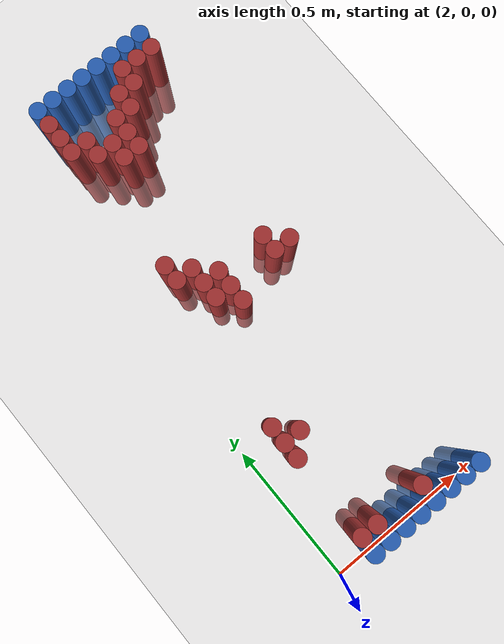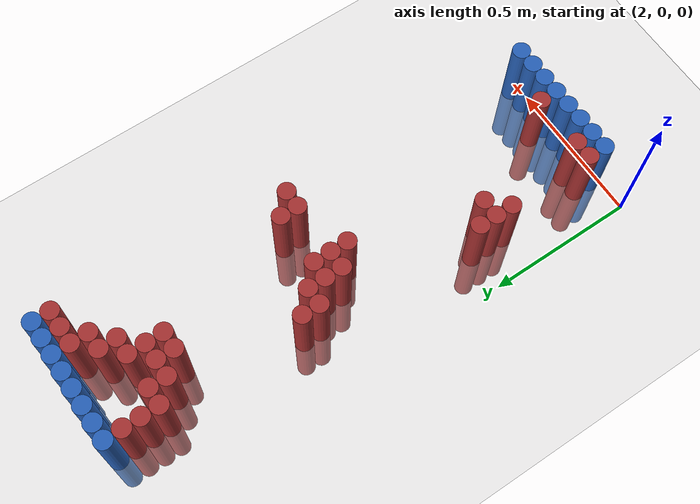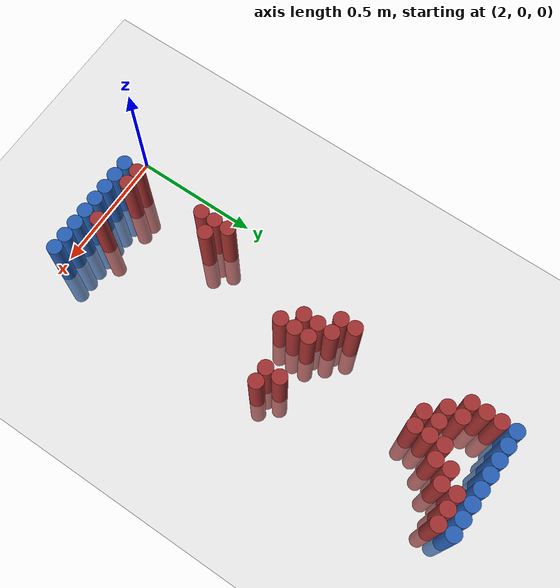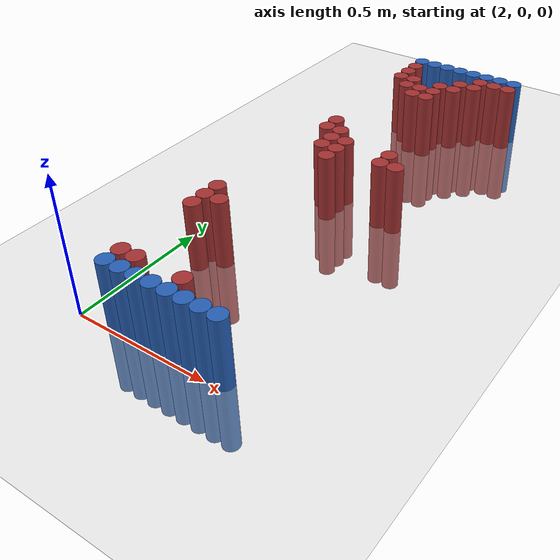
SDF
<sdf version="1.6">
 <world name="default">
  <model name="ground_plane">
   <static>1</static>
   <link name="link">
    <collision name="collision">
     <geometry><plane><normal>0 0 1</normal><size>100 100</size></plane></geometry>
     <surface><friction><ode><mu>100</mu><mu2>50</mu2></ode></friction></surface>
    </collision>
    <visual name="visual">
     <cast_shadows>0</cast_shadows>
     <geometry><plane><normal>0 0 1</normal><size>100 100</size></plane></geometry>
     <material>
      <script><uri>file://media/materials/scripts/gazebo.material</uri><name>Gazebo/Grey</name></script>
     </material>
    </visual>
   </link>
  </model>
  <model name="unit_cylinder_97">
   <static>1</static>
   <pose>2.190000 1.770000 0.000000 0.000000 0.000000 0.000000</pose>
   <link name="link">
    <inertial>
     <mass>1</mass>
     <inertia><ixx>0.145833</ixx><ixy>0</ixy><ixz>0</ixz><iyy>0.145833</iyy><iyz>0</iyz><izz>0.125</izz></inertia>
    </inertial>
    <collision name="collision">
     <geometry><cylinder><radius>0.030000</radius><length>0.5</length></cylinder></geometry>
    </collision>
    <visual name="visual">
     <geometry><cylinder><radius>0.030000</radius><length>0.5</length></cylinder></geometry>
     <material>
      <ambient>0.152000 0.379000 0.720000 1</ambient>
      <diffuse>0.152000 0.379000 0.720000 1</diffuse>
     </material>
     <material>
      <script><name>Gazebo/Grey</name><uri>file://media/materials/scripts/gazebo.material</uri></script>
     </material>
    </visual>
   </link>
  </model>
  <model name="unit_cylinder_98">
   <static>1</static>
   <pose>2.250000 1.770000 0.000000 0.000000 0.000000 0.000000</pose>
   <link name="link">
    <inertial>
     <mass>1</mass>
     <inertia><ixx>0.145833</ixx><ixy>0</ixy><ixz>0</ixz><iyy>0.145833</iyy><iyz>0</iyz><izz>0.125</izz></inertia>
    </inertial>
    <collision name="collision">
     <geometry><cylinder><radius>0.030000</radius><length>0.5</length></cylinder></geometry>
    </collision>
    <visual name="visual">
     <geometry><cylinder><radius>0.030000</radius><length>0.5</length></cylinder></geometry>
     <material>
      <ambient>0.152000 0.379000 0.720000 1</ambient>
      <diffuse>0.152000 0.379000 0.720000 1</diffuse>
     </material>
     <material>
      <script><name>Gazebo/Grey</name><uri>file://media/materials/scripts/gazebo.material</uri></script>
     </material>
    </visual>
   </link>
  </model>
  <model name="unit_cylinder_99">
   <static>1</static>
   <pose>2.310000 1.770000 0.000000 0.000000 0.000000 0.000000</pose>
   <link name="link">
    <inertial>
     <mass>1</mass>
     <inertia><ixx>0.145833</ixx><ixy>0</ixy><ixz>0</ixz><iyy>0.145833</iyy><iyz>0</iyz><izz>0.125</izz></inertia>
    </inertial>
    <collision name="collision">
     <geometry><cylinder><radius>0.030000</radius><length>0.5</length></cylinder></geometry>
    </collision>
    <visual name="visual">
     <geometry><cylinder><radius>0.030000</radius><length>0.5</length></cylinder></geometry>
     <material>
      <ambient>0.152000 0.379000 0.720000 1</ambient>
      <diffuse>0.152000 0.379000 0.720000 1</diffuse>
     </material>
     <material>
      <script><name>Gazebo/Grey</name><uri>file://media/materials/scripts/gazebo.material</uri></script>
     </material>
    </visual>
   </link>
  </model>
  <model name="unit_cylinder_100">
   <static>1</static>
   <pose>2.370000 1.770000 0.000000 0.000000 0.000000 0.000000</pose>
   <link name="link">
    <inertial>
     <mass>1</mass>
     <inertia><ixx>0.145833</ixx><ixy>0</ixy><ixz>0</ixz><iyy>0.145833</iyy><iyz>0</iyz><izz>0.125</izz></inertia>
    </inertial>
    <collision name="collision">
     <geometry><cylinder><radius>0.030000</radius><length>0.5</length></cylinder></geometry>
    </collision>
    <visual name="visual">
     <geometry><cylinder><radius>0.030000</radius><length>0.5</length></cylinder></geometry>
     <material>
      <ambient>0.152000 0.379000 0.720000 1</ambient>
      <diffuse>0.152000 0.379000 0.720000 1</diffuse>
     </material>
     <material>
      <script><name>Gazebo/Grey</name><uri>file://media/materials/scripts/gazebo.material</uri></script>
     </material>
    </visual>
   </link>
  </model>
  <model name="unit_cylinder_101">
   <static>1</static>
   <pose>2.430000 1.770000 0.000000 0.000000 0.000000 0.000000</pose>
   <link name="link">
    <inertial>
     <mass>1</mass>
     <inertia><ixx>0.145833</ixx><ixy>0</ixy><ixz>0</ixz><iyy>0.145833</iyy><iyz>0</iyz><izz>0.125</izz></inertia>
    </inertial>
    <collision name="collision">
     <geometry><cylinder><radius>0.030000</radius><length>0.5</length></cylinder></geometry>
    </collision>
    <visual name="visual">
     <geometry><cylinder><radius>0.030000</radius><length>0.5</length></cylinder></geometry>
     <material>
      <ambient>0.152000 0.379000 0.720000 1</ambient>
      <diffuse>0.152000 0.379000 0.720000 1</diffuse>
     </material>
     <material>
      <script><name>Gazebo/Grey</name><uri>file://media/materials/scripts/gazebo.material</uri></script>
     </material>
    </visual>
   </link>
  </model>
  <model name="unit_cylinder_102">
   <static>1</static>
   <pose>2.490000 1.770000 0.000000 0.000000 0.000000 0.000000</pose>
   <link name="link">
    <inertial>
     <mass>1</mass>
     <inertia><ixx>0.145833</ixx><ixy>0</ixy><ixz>0</ixz><iyy>0.145833</iyy><iyz>0</iyz><izz>0.125</izz></inertia>
    </inertial>
    <collision name="collision">
     <geometry><cylinder><radius>0.030000</radius><length>0.5</length></cylinder></geometry>
    </collision>
    <visual name="visual">
     <geometry><cylinder><radius>0.030000</radius><length>0.5</length></cylinder></geometry>
     <material>
      <ambient>0.152000 0.379000 0.720000 1</ambient>
      <diffuse>0.152000 0.379000 0.720000 1</diffuse>
     </material>
     <material>
      <script><name>Gazebo/Grey</name><uri>file://media/materials/scripts/gazebo.material</uri></script>
     </material>
    </visual>
   </link>
  </model>
  <model name="unit_cylinder_103">
   <static>1</static>
   <pose>2.550000 1.770000 0.000000 0.000000 0.000000 0.000000</pose>
   <link name="link">
    <inertial>
     <mass>1</mass>
     <inertia><ixx>0.145833</ixx><ixy>0</ixy><ixz>0</ixz><iyy>0.145833</iyy><iyz>0</iyz><izz>0.125</izz></inertia>
    </inertial>
    <collision name="collision">
     <geometry><cylinder><radius>0.030000</radius><length>0.5</length></cylinder></geometry>
    </collision>
    <visual name="visual">
     <geometry><cylinder><radius>0.030000</radius><length>0.5</length></cylinder></geometry>
     <material>
      <ambient>0.152000 0.379000 0.720000 1</ambient>
      <diffuse>0.152000 0.379000 0.720000 1</diffuse>
     </material>
     <material>
      <script><name>Gazebo/Grey</name><uri>file://media/materials/scripts/gazebo.material</uri></script>
     </material>
    </visual>
   </link>
  </model>
  <model name="unit_cylinder_104">
   <static>1</static>
   <pose>2.610000 1.770000 0.000000 0.000000 0.000000 0.000000</pose>
   <link name="link">
    <inertial>
     <mass>1</mass>
     <inertia><ixx>0.145833</ixx><ixy>0</ixy><ixz>0</ixz><iyy>0.145833</iyy><iyz>0</iyz><izz>0.125</izz></inertia>
    </inertial>
    <collision name="collision">
     <geometry><cylinder><radius>0.030000</radius><length>0.5</length></cylinder></geometry>
    </collision>
    <visual name="visual">
     <geometry><cylinder><radius>0.030000</radius><length>0.5</length></cylinder></geometry>
     <material>
      <ambient>0.152000 0.379000 0.720000 1</ambient>
      <diffuse>0.152000 0.379000 0.720000 1</diffuse>
     </material>
     <material>
      <script><name>Gazebo/Grey</name><uri>file://media/materials/scripts/gazebo.material</uri></script>
     </material>
    </visual>
   </link>
  </model>
  <model name="unit_cylinder_126">
   <static>1</static>
   <pose>2.190000 1.710000 0.000000 0.000000 0.000000 0.000000</pose>
   <link name="link">
    <inertial>
     <mass>1</mass>
     <inertia><ixx>0.145833</ixx><ixy>0</ixy><ixz>0</ixz><iyy>0.145833</iyy><iyz>0</iyz><izz>0.125</izz></inertia>
    </inertial>
    <collision name="collision">
     <geometry><cylinder><radius>0.030000</radius><length>0.5</length></cylinder></geometry>
    </collision>
    <visual name="visual">
     <geometry><cylinder><radius>0.030000</radius><length>0.5</length></cylinder></geometry>
     <material>
      <ambient>0.648000 0.192000 0.192000 1</ambient>
      <diffuse>0.648000 0.192000 0.192000 1</diffuse>
     </material>
     <material>
      <script><name>Gazebo/Grey</name><uri>file://media/materials/scripts/gazebo.material</uri></script>
     </material>
    </visual>
   </link>
  </model>
  <model name="unit_cylinder_127">
   <static>1</static>
   <pose>2.490000 1.710000 0.000000 0.000000 0.000000 0.000000</pose>
   <link name="link">
    <inertial>
     <mass>1</mass>
     <inertia><ixx>0.145833</ixx><ixy>0</ixy><ixz>0</ixz><iyy>0.145833</iyy><iyz>0</iyz><izz>0.125</izz></inertia>
    </inertial>
    <collision name="collision">
     <geometry><cylinder><radius>0.030000</radius><length>0.5</length></cylinder></geometry>
    </collision>
    <visual name="visual">
     <geometry><cylinder><radius>0.030000</radius><length>0.5</length></cylinder></geometry>
     <material>
      <ambient>0.648000 0.192000 0.192000 1</ambient>
      <diffuse>0.648000 0.192000 0.192000 1</diffuse>
     </material>
     <material>
      <script><name>Gazebo/Grey</name><uri>file://media/materials/scripts/gazebo.material</uri></script>
     </material>
    </visual>
   </link>
  </model>
  <model name="unit_cylinder_128">
   <static>1</static>
   <pose>2.550000 1.710000 0.000000 0.000000 0.000000 0.000000</pose>
   <link name="link">
    <inertial>
     <mass>1</mass>
     <inertia><ixx>0.145833</ixx><ixy>0</ixy><ixz>0</ixz><iyy>0.145833</iyy><iyz>0</iyz><izz>0.125</izz></inertia>
    </inertial>
    <collision name="collision">
     <geometry><cylinder><radius>0.030000</radius><length>0.5</length></cylinder></geometry>
    </collision>
    <visual name="visual">
     <geometry><cylinder><radius>0.030000</radius><length>0.5</length></cylinder></geometry>
     <material>
      <ambient>0.648000 0.192000 0.192000 1</ambient>
      <diffuse>0.648000 0.192000 0.192000 1</diffuse>
     </material>
     <material>
      <script><name>Gazebo/Grey</name><uri>file://media/materials/scripts/gazebo.material</uri></script>
     </material>
    </visual>
   </link>
  </model>
  <model name="unit_cylinder_129">
   <static>1</static>
   <pose>2.610000 1.710000 0.000000 0.000000 0.000000 0.000000</pose>
   <link name="link">
    <inertial>
     <mass>1</mass>
     <inertia><ixx>0.145833</ixx><ixy>0</ixy><ixz>0</ixz><iyy>0.145833</iyy><iyz>0</iyz><izz>0.125</izz></inertia>
    </inertial>
    <collision name="collision">
     <geometry><cylinder><radius>0.030000</radius><length>0.5</length></cylinder></geometry>
    </collision>
    <visual name="visual">
     <geometry><cylinder><radius>0.030000</radius><length>0.5</length></cylinder></geometry>
     <material>
      <ambient>0.648000 0.192000 0.192000 1</ambient>
      <diffuse>0.648000 0.192000 0.192000 1</diffuse>
     </material>
     <material>
      <script><name>Gazebo/Grey</name><uri>file://media/materials/scripts/gazebo.material</uri></script>
     </material>
    </visual>
   </link>
  </model>
  <model name="unit_cylinder_143">
   <static>1</static>
   <pose>2.190000 1.650000 0.000000 0.000000 0.000000 0.000000</pose>
   <link name="link">
    <inertial>
     <mass>1</mass>
     <inertia><ixx>0.145833</ixx><ixy>0</ixy><ixz>0</ixz><iyy>0.145833</iyy><iyz>0</iyz><izz>0.125</izz></inertia>
    </inertial>
    <collision name="collision">
     <geometry><cylinder><radius>0.030000</radius><length>0.5</length></cylinder></geometry>
    </collision>
    <visual name="visual">
     <geometry><cylinder><radius>0.030000</radius><length>0.5</length></cylinder></geometry>
     <material>
      <ambient>0.648000 0.192000 0.192000 1</ambient>
      <diffuse>0.648000 0.192000 0.192000 1</diffuse>
     </material>
     <material>
      <script><name>Gazebo/Grey</name><uri>file://media/materials/scripts/gazebo.material</uri></script>
     </material>
    </visual>
   </link>
  </model>
  <model name="unit_cylinder_144">
   <static>1</static>
   <pose>2.430000 1.650000 0.000000 0.000000 0.000000 0.000000</pose>
   <link name="link">
    <inertial>
     <mass>1</mass>
     <inertia><ixx>0.145833</ixx><ixy>0</ixy><ixz>0</ixz><iyy>0.145833</iyy><iyz>0</iyz><izz>0.125</izz></inertia>
    </inertial>
    <collision name="collision">
     <geometry><cylinder><radius>0.030000</radius><length>0.5</length></cylinder></geometry>
    </collision>
    <visual name="visual">
     <geometry><cylinder><radius>0.030000</radius><length>0.5</length></cylinder></geometry>
     <material>
      <ambient>0.648000 0.192000 0.192000 1</ambient>
      <diffuse>0.648000 0.192000 0.192000 1</diffuse>
     </material>
     <material>
      <script><name>Gazebo/Grey</name><uri>file://media/materials/scripts/gazebo.material</uri></script>
     </material>
    </visual>
   </link>
  </model>
  <model name="unit_cylinder_145">
   <static>1</static>
   <pose>2.490000 1.650000 0.000000 0.000000 0.000000 0.000000</pose>
   <link name="link">
    <inertial>
     <mass>1</mass>
     <inertia><ixx>0.145833</ixx><ixy>0</ixy><ixz>0</ixz><iyy>0.145833</iyy><iyz>0</iyz><izz>0.125</izz></inertia>
    </inertial>
    <collision name="collision">
     <geometry><cylinder><radius>0.030000</radius><length>0.5</length></cylinder></geometry>
    </collision>
    <visual name="visual">
     <geometry><cylinder><radius>0.030000</radius><length>0.5</length></cylinder></geometry>
     <material>
      <ambient>0.648000 0.192000 0.192000 1</ambient>
      <diffuse>0.648000 0.192000 0.192000 1</diffuse>
     </material>
     <material>
      <script><name>Gazebo/Grey</name><uri>file://media/materials/scripts/gazebo.material</uri></script>
     </material>
    </visual>
   </link>
  </model>
  <model name="unit_cylinder_147">
   <static>1</static>
   <pose>2.190000 1.590000 0.000000 0.000000 0.000000 0.000000</pose>
   <link name="link">
    <inertial>
     <mass>1</mass>
     <inertia><ixx>0.145833</ixx><ixy>0</ixy><ixz>0</ixz><iyy>0.145833</iyy><iyz>0</iyz><izz>0.125</izz></inertia>
    </inertial>
    <collision name="collision">
     <geometry><cylinder><radius>0.030000</radius><length>0.5</length></cylinder></geometry>
    </collision>
    <visual name="visual">
     <geometry><cylinder><radius>0.030000</radius><length>0.5</length></cylinder></geometry>
     <material>
      <ambient>0.648000 0.192000 0.192000 1</ambient>
      <diffuse>0.648000 0.192000 0.192000 1</diffuse>
     </material>
     <material>
      <script><name>Gazebo/Grey</name><uri>file://media/materials/scripts/gazebo.material</uri></script>
     </material>
    </visual>
   </link>
  </model>
  <model name="unit_cylinder_148">
   <static>1</static>
   <pose>2.250000 1.590000 0.000000 0.000000 0.000000 0.000000</pose>
   <link name="link">
    <inertial>
     <mass>1</mass>
     <inertia><ixx>0.145833</ixx><ixy>0</ixy><ixz>0</ixz><iyy>0.145833</iyy><iyz>0</iyz><izz>0.125</izz></inertia>
    </inertial>
    <collision name="collision">
     <geometry><cylinder><radius>0.030000</radius><length>0.5</length></cylinder></geometry>
    </collision>
    <visual name="visual">
     <geometry><cylinder><radius>0.030000</radius><length>0.5</length></cylinder></geometry>
     <material>
      <ambient>0.648000 0.192000 0.192000 1</ambient>
      <diffuse>0.648000 0.192000 0.192000 1</diffuse>
     </material>
     <material>
      <script><name>Gazebo/Grey</name><uri>file://media/materials/scripts/gazebo.material</uri></script>
     </material>
    </visual>
   </link>
  </model>
  <model name="unit_cylinder_149">
   <static>1</static>
   <pose>2.370000 1.590000 0.000000 0.000000 0.000000 0.000000</pose>
   <link name="link">
    <inertial>
     <mass>1</mass>
     <inertia><ixx>0.145833</ixx><ixy>0</ixy><ixz>0</ixz><iyy>0.145833</iyy><iyz>0</iyz><izz>0.125</izz></inertia>
    </inertial>
    <collision name="collision">
     <geometry><cylinder><radius>0.030000</radius><length>0.5</length></cylinder></geometry>
    </collision>
    <visual name="visual">
     <geometry><cylinder><radius>0.030000</radius><length>0.5</length></cylinder></geometry>
     <material>
      <ambient>0.648000 0.192000 0.192000 1</ambient>
      <diffuse>0.648000 0.192000 0.192000 1</diffuse>
     </material>
     <material>
      <script><name>Gazebo/Grey</name><uri>file://media/materials/scripts/gazebo.material</uri></script>
     </material>
    </visual>
   </link>
  </model>
  <model name="unit_cylinder_150">
   <static>1</static>
   <pose>2.430000 1.590000 0.000000 0.000000 0.000000 0.000000</pose>
   <link name="link">
    <inertial>
     <mass>1</mass>
     <inertia><ixx>0.145833</ixx><ixy>0</ixy><ixz>0</ixz><iyy>0.145833</iyy><iyz>0</iyz><izz>0.125</izz></inertia>
    </inertial>
    <collision name="collision">
     <geometry><cylinder><radius>0.030000</radius><length>0.5</length></cylinder></geometry>
    </collision>
    <visual name="visual">
     <geometry><cylinder><radius>0.030000</radius><length>0.5</length></cylinder></geometry>
     <material>
      <ambient>0.648000 0.192000 0.192000 1</ambient>
      <diffuse>0.648000 0.192000 0.192000 1</diffuse>
     </material>
     <material>
      <script><name>Gazebo/Grey</name><uri>file://media/materials/scripts/gazebo.material</uri></script>
     </material>
    </visual>
   </link>
  </model>
  <model name="unit_cylinder_154">
   <static>1</static>
   <pose>2.250000 1.530000 0.000000 0.000000 0.000000 0.000000</pose>
   <link name="link">
    <inertial>
     <mass>1</mass>
     <inertia><ixx>0.145833</ixx><ixy>0</ixy><ixz>0</ixz><iyy>0.145833</iyy><iyz>0</iyz><izz>0.125</izz></inertia>
    </inertial>
    <collision name="collision">
     <geometry><cylinder><radius>0.030000</radius><length>0.5</length></cylinder></geometry>
    </collision>
    <visual name="visual">
     <geometry><cylinder><radius>0.030000</radius><length>0.5</length></cylinder></geometry>
     <material>
      <ambient>0.648000 0.192000 0.192000 1</ambient>
      <diffuse>0.648000 0.192000 0.192000 1</diffuse>
     </material>
     <material>
      <script><name>Gazebo/Grey</name><uri>file://media/materials/scripts/gazebo.material</uri></script>
     </material>
    </visual>
   </link>
  </model>
  <model name="unit_cylinder_155">
   <static>1</static>
   <pose>2.310000 1.530000 0.000000 0.000000 0.000000 0.000000</pose>
   <link name="link">
    <inertial>
     <mass>1</mass>
     <inertia><ixx>0.145833</ixx><ixy>0</ixy><ixz>0</ixz><iyy>0.145833</iyy><iyz>0</iyz><izz>0.125</izz></inertia>
    </inertial>
    <collision name="collision">
     <geometry><cylinder><radius>0.030000</radius><length>0.5</length></cylinder></geometry>
    </collision>
    <visual name="visual">
     <geometry><cylinder><radius>0.030000</radius><length>0.5</length></cylinder></geometry>
     <material>
      <ambient>0.648000 0.192000 0.192000 1</ambient>
      <diffuse>0.648000 0.192000 0.192000 1</diffuse>
     </material>
     <material>
      <script><name>Gazebo/Grey</name><uri>file://media/materials/scripts/gazebo.material</uri></script>
     </material>
    </visual>
   </link>
  </model>
  <model name="unit_cylinder_156">
   <static>1</static>
   <pose>2.370000 1.530000 0.000000 0.000000 0.000000 0.000000</pose>
   <link name="link">
    <inertial>
     <mass>1</mass>
     <inertia><ixx>0.145833</ixx><ixy>0</ixy><ixz>0</ixz><iyy>0.145833</iyy><iyz>0</iyz><izz>0.125</izz></inertia>
    </inertial>
    <collision name="collision">
     <geometry><cylinder><radius>0.030000</radius><length>0.5</length></cylinder></geometry>
    </collision>
    <visual name="visual">
     <geometry><cylinder><radius>0.030000</radius><length>0.5</length></cylinder></geometry>
     <material>
      <ambient>0.648000 0.192000 0.192000 1</ambient>
      <diffuse>0.648000 0.192000 0.192000 1</diffuse>
     </material>
     <material>
      <script><name>Gazebo/Grey</name><uri>file://media/materials/scripts/gazebo.material</uri></script>
     </material>
    </visual>
   </link>
  </model>
  <model name="unit_cylinder_161">
   <static>1</static>
   <pose>2.310000 1.470000 0.000000 0.000000 0.000000 0.000000</pose>
   <link name="link">
    <inertial>
     <mass>1</mass>
     <inertia><ixx>0.145833</ixx><ixy>0</ixy><ixz>0</ixz><iyy>0.145833</iyy><iyz>0</iyz><izz>0.125</izz></inertia>
    </inertial>
    <collision name="collision">
     <geometry><cylinder><radius>0.030000</radius><length>0.5</length></cylinder></geometry>
    </collision>
    <visual name="visual">
     <geometry><cylinder><radius>0.030000</radius><length>0.5</length></cylinder></geometry>
     <material>
      <ambient>0.648000 0.192000 0.192000 1</ambient>
      <diffuse>0.648000 0.192000 0.192000 1</diffuse>
     </material>
     <material>
      <script><name>Gazebo/Grey</name><uri>file://media/materials/scripts/gazebo.material</uri></script>
     </material>
    </visual>
   </link>
  </model>
  <model name="unit_cylinder_162">
   <static>1</static>
   <pose>2.370000 1.470000 0.000000 0.000000 0.000000 0.000000</pose>
   <link name="link">
    <inertial>
     <mass>1</mass>
     <inertia><ixx>0.145833</ixx><ixy>0</ixy><ixz>0</ixz><iyy>0.145833</iyy><iyz>0</iyz><izz>0.125</izz></inertia>
    </inertial>
    <collision name="collision">
     <geometry><cylinder><radius>0.030000</radius><length>0.5</length></cylinder></geometry>
    </collision>
    <visual name="visual">
     <geometry><cylinder><radius>0.030000</radius><length>0.5</length></cylinder></geometry>
     <material>
      <ambient>0.648000 0.192000 0.192000 1</ambient>
      <diffuse>0.648000 0.192000 0.192000 1</diffuse>
     </material>
     <material>
      <script><name>Gazebo/Grey</name><uri>file://media/materials/scripts/gazebo.material</uri></script>
     </material>
    </visual>
   </link>
  </model>
  <model name="unit_cylinder_173">
   <static>1</static>
   <pose>2.190000 1.110000 0.000000 0.000000 0.000000 0.000000</pose>
   <link name="link">
    <inertial>
     <mass>1</mass>
     <inertia><ixx>0.145833</ixx><ixy>0</ixy><ixz>0</ixz><iyy>0.145833</iyy><iyz>0</iyz><izz>0.125</izz></inertia>
    </inertial>
    <collision name="collision">
     <geometry><cylinder><radius>0.030000</radius><length>0.5</length></cylinder></geometry>
    </collision>
    <visual name="visual">
     <geometry><cylinder><radius>0.030000</radius><length>0.5</length></cylinder></geometry>
     <material>
      <ambient>0.648000 0.192000 0.192000 1</ambient>
      <diffuse>0.648000 0.192000 0.192000 1</diffuse>
     </material>
     <material>
      <script><name>Gazebo/Grey</name><uri>file://media/materials/scripts/gazebo.material</uri></script>
     </material>
    </visual>
   </link>
  </model>
  <model name="unit_cylinder_175">
   <static>1</static>
   <pose>2.190000 1.050000 0.000000 0.000000 0.000000 0.000000</pose>
   <link name="link">
    <inertial>
     <mass>1</mass>
     <inertia><ixx>0.145833</ixx><ixy>0</ixy><ixz>0</ixz><iyy>0.145833</iyy><iyz>0</iyz><izz>0.125</izz></inertia>
    </inertial>
    <collision name="collision">
     <geometry><cylinder><radius>0.030000</radius><length>0.5</length></cylinder></geometry>
    </collision>
    <visual name="visual">
     <geometry><cylinder><radius>0.030000</radius><length>0.5</length></cylinder></geometry>
     <material>
      <ambient>0.648000 0.192000 0.192000 1</ambient>
      <diffuse>0.648000 0.192000 0.192000 1</diffuse>
     </material>
     <material>
      <script><name>Gazebo/Grey</name><uri>file://media/materials/scripts/gazebo.material</uri></script>
     </material>
    </visual>
   </link>
  </model>
  <model name="unit_cylinder_176">
   <static>1</static>
   <pose>2.250000 1.050000 0.000000 0.000000 0.000000 0.000000</pose>
   <link name="link">
    <inertial>
     <mass>1</mass>
     <inertia><ixx>0.145833</ixx><ixy>0</ixy><ixz>0</ixz><iyy>0.145833</iyy><iyz>0</iyz><izz>0.125</izz></inertia>
    </inertial>
    <collision name="collision">
     <geometry><cylinder><radius>0.030000</radius><length>0.5</length></cylinder></geometry>
    </collision>
    <visual name="visual">
     <geometry><cylinder><radius>0.030000</radius><length>0.5</length></cylinder></geometry>
     <material>
      <ambient>0.648000 0.192000 0.192000 1</ambient>
      <diffuse>0.648000 0.192000 0.192000 1</diffuse>
     </material>
     <material>
      <script><name>Gazebo/Grey</name><uri>file://media/materials/scripts/gazebo.material</uri></script>
     </material>
    </visual>
   </link>
  </model>
  <model name="unit_cylinder_182">
   <static>1</static>
   <pose>2.250000 0.990000 0.000000 0.000000 0.000000 0.000000</pose>
   <link name="link">
    <inertial>
     <mass>1</mass>
     <inertia><ixx>0.145833</ixx><ixy>0</ixy><ixz>0</ixz><iyy>0.145833</iyy><iyz>0</iyz><izz>0.125</izz></inertia>
    </inertial>
    <collision name="collision">
     <geometry><cylinder><radius>0.030000</radius><length>0.5</length></cylinder></geometry>
    </collision>
    <visual name="visual">
     <geometry><cylinder><radius>0.030000</radius><length>0.5</length></cylinder></geometry>
     <material>
      <ambient>0.648000 0.192000 0.192000 1</ambient>
      <diffuse>0.648000 0.192000 0.192000 1</diffuse>
     </material>
     <material>
      <script><name>Gazebo/Grey</name><uri>file://media/materials/scripts/gazebo.material</uri></script>
     </material>
    </visual>
   </link>
  </model>
  <model name="unit_cylinder_183">
   <static>1</static>
   <pose>2.310000 0.990000 0.000000 0.000000 0.000000 0.000000</pose>
   <link name="link">
    <inertial>
     <mass>1</mass>
     <inertia><ixx>0.145833</ixx><ixy>0</ixy><ixz>0</ixz><iyy>0.145833</iyy><iyz>0</iyz><izz>0.125</izz></inertia>
    </inertial>
    <collision name="collision">
     <geometry><cylinder><radius>0.030000</radius><length>0.5</length></cylinder></geometry>
    </collision>
    <visual name="visual">
     <geometry><cylinder><radius>0.030000</radius><length>0.5</length></cylinder></geometry>
     <material>
      <ambient>0.648000 0.192000 0.192000 1</ambient>
      <diffuse>0.648000 0.192000 0.192000 1</diffuse>
     </material>
     <material>
      <script><name>Gazebo/Grey</name><uri>file://media/materials/scripts/gazebo.material</uri></script>
     </material>
    </visual>
   </link>
  </model>
  <model name="unit_cylinder_184">
   <static>1</static>
   <pose>2.490000 0.990000 0.000000 0.000000 0.000000 0.000000</pose>
   <link name="link">
    <inertial>
     <mass>1</mass>
     <inertia><ixx>0.145833</ixx><ixy>0</ixy><ixz>0</ixz><iyy>0.145833</iyy><iyz>0</iyz><izz>0.125</izz></inertia>
    </inertial>
    <collision name="collision">
     <geometry><cylinder><radius>0.030000</radius><length>0.5</length></cylinder></geometry>
    </collision>
    <visual name="visual">
     <geometry><cylinder><radius>0.030000</radius><length>0.5</length></cylinder></geometry>
     <material>
      <ambient>0.648000 0.192000 0.192000 1</ambient>
      <diffuse>0.648000 0.192000 0.192000 1</diffuse>
     </material>
     <material>
      <script><name>Gazebo/Grey</name><uri>file://media/materials/scripts/gazebo.material</uri></script>
     </material>
    </visual>
   </link>
  </model>
  <model name="unit_cylinder_188">
   <static>1</static>
   <pose>2.250000 0.930000 0.000000 0.000000 0.000000 0.000000</pose>
   <link name="link">
    <inertial>
     <mass>1</mass>
     <inertia><ixx>0.145833</ixx><ixy>0</ixy><ixz>0</ixz><iyy>0.145833</iyy><iyz>0</iyz><izz>0.125</izz></inertia>
    </inertial>
    <collision name="collision">
     <geometry><cylinder><radius>0.030000</radius><length>0.5</length></cylinder></geometry>
    </collision>
    <visual name="visual">
     <geometry><cylinder><radius>0.030000</radius><length>0.5</length></cylinder></geometry>
     <material>
      <ambient>0.648000 0.192000 0.192000 1</ambient>
      <diffuse>0.648000 0.192000 0.192000 1</diffuse>
     </material>
     <material>
      <script><name>Gazebo/Grey</name><uri>file://media/materials/scripts/gazebo.material</uri></script>
     </material>
    </visual>
   </link>
  </model>
  <model name="unit_cylinder_189">
   <static>1</static>
   <pose>2.310000 0.930000 0.000000 0.000000 0.000000 0.000000</pose>
   <link name="link">
    <inertial>
     <mass>1</mass>
     <inertia><ixx>0.145833</ixx><ixy>0</ixy><ixz>0</ixz><iyy>0.145833</iyy><iyz>0</iyz><izz>0.125</izz></inertia>
    </inertial>
    <collision name="collision">
     <geometry><cylinder><radius>0.030000</radius><length>0.5</length></cylinder></geometry>
    </collision>
    <visual name="visual">
     <geometry><cylinder><radius>0.030000</radius><length>0.5</length></cylinder></geometry>
     <material>
      <ambient>0.648000 0.192000 0.192000 1</ambient>
      <diffuse>0.648000 0.192000 0.192000 1</diffuse>
     </material>
     <material>
      <script><name>Gazebo/Grey</name><uri>file://media/materials/scripts/gazebo.material</uri></script>
     </material>
    </visual>
   </link>
  </model>
  <model name="unit_cylinder_190">
   <static>1</static>
   <pose>2.490000 0.930000 0.000000 0.000000 0.000000 0.000000</pose>
   <link name="link">
    <inertial>
     <mass>1</mass>
     <inertia><ixx>0.145833</ixx><ixy>0</ixy><ixz>0</ixz><iyy>0.145833</iyy><iyz>0</iyz><izz>0.125</izz></inertia>
    </inertial>
    <collision name="collision">
     <geometry><cylinder><radius>0.030000</radius><length>0.5</length></cylinder></geometry>
    </collision>
    <visual name="visual">
     <geometry><cylinder><radius>0.030000</radius><length>0.5</length></cylinder></geometry>
     <material>
      <ambient>0.648000 0.192000 0.192000 1</ambient>
      <diffuse>0.648000 0.192000 0.192000 1</diffuse>
     </material>
     <material>
      <script><name>Gazebo/Grey</name><uri>file://media/materials/scripts/gazebo.material</uri></script>
     </material>
    </visual>
   </link>
  </model>
  <model name="unit_cylinder_191">
   <static>1</static>
   <pose>2.550000 0.930000 0.000000 0.000000 0.000000 0.000000</pose>
   <link name="link">
    <inertial>
     <mass>1</mass>
     <inertia><ixx>0.145833</ixx><ixy>0</ixy><ixz>0</ixz><iyy>0.145833</iyy><iyz>0</iyz><izz>0.125</izz></inertia>
    </inertial>
    <collision name="collision">
     <geometry><cylinder><radius>0.030000</radius><length>0.5</length></cylinder></geometry>
    </collision>
    <visual name="visual">
     <geometry><cylinder><radius>0.030000</radius><length>0.5</length></cylinder></geometry>
     <material>
      <ambient>0.648000 0.192000 0.192000 1</ambient>
      <diffuse>0.648000 0.192000 0.192000 1</diffuse>
     </material>
     <material>
      <script><name>Gazebo/Grey</name><uri>file://media/materials/scripts/gazebo.material</uri></script>
     </material>
    </visual>
   </link>
  </model>
  <model name="unit_cylinder_195">
   <static>1</static>
   <pose>2.310000 0.870000 0.000000 0.000000 0.000000 0.000000</pose>
   <link name="link">
    <inertial>
     <mass>1</mass>
     <inertia><ixx>0.145833</ixx><ixy>0</ixy><ixz>0</ixz><iyy>0.145833</iyy><iyz>0</iyz><izz>0.125</izz></inertia>
    </inertial>
    <collision name="collision">
     <geometry><cylinder><radius>0.030000</radius><length>0.5</length></cylinder></geometry>
    </collision>
    <visual name="visual">
     <geometry><cylinder><radius>0.030000</radius><length>0.5</length></cylinder></geometry>
     <material>
      <ambient>0.648000 0.192000 0.192000 1</ambient>
      <diffuse>0.648000 0.192000 0.192000 1</diffuse>
     </material>
     <material>
      <script><name>Gazebo/Grey</name><uri>file://media/materials/scripts/gazebo.material</uri></script>
     </material>
    </visual>
   </link>
  </model>
  <model name="unit_cylinder_228">
   <static>1</static>
   <pose>2.130000 0.510000 0.000000 0.000000 0.000000 0.000000</pose>
   <link name="link">
    <inertial>
     <mass>1</mass>
     <inertia><ixx>0.145833</ixx><ixy>0</ixy><ixz>0</ixz><iyy>0.145833</iyy><iyz>0</iyz><izz>0.125</izz></inertia>
    </inertial>
    <collision name="collision">
     <geometry><cylinder><radius>0.030000</radius><length>0.5</length></cylinder></geometry>
    </collision>
    <visual name="visual">
     <geometry><cylinder><radius>0.030000</radius><length>0.5</length></cylinder></geometry>
     <material>
      <ambient>0.648000 0.192000 0.192000 1</ambient>
      <diffuse>0.648000 0.192000 0.192000 1</diffuse>
     </material>
     <material>
      <script><name>Gazebo/Grey</name><uri>file://media/materials/scripts/gazebo.material</uri></script>
     </material>
    </visual>
   </link>
  </model>
  <model name="unit_cylinder_237">
   <static>1</static>
   <pose>2.130000 0.450000 0.000000 0.000000 0.000000 0.000000</pose>
   <link name="link">
    <inertial>
     <mass>1</mass>
     <inertia><ixx>0.145833</ixx><ixy>0</ixy><ixz>0</ixz><iyy>0.145833</iyy><iyz>0</iyz><izz>0.125</izz></inertia>
    </inertial>
    <collision name="collision">
     <geometry><cylinder><radius>0.030000</radius><length>0.5</length></cylinder></geometry>
    </collision>
    <visual name="visual">
     <geometry><cylinder><radius>0.030000</radius><length>0.5</length></cylinder></geometry>
     <material>
      <ambient>0.648000 0.192000 0.192000 1</ambient>
      <diffuse>0.648000 0.192000 0.192000 1</diffuse>
     </material>
     <material>
      <script><name>Gazebo/Grey</name><uri>file://media/materials/scripts/gazebo.material</uri></script>
     </material>
    </visual>
   </link>
  </model>
  <model name="unit_cylinder_238">
   <static>1</static>
   <pose>2.190000 0.450000 0.000000 0.000000 0.000000 0.000000</pose>
   <link name="link">
    <inertial>
     <mass>1</mass>
     <inertia><ixx>0.145833</ixx><ixy>0</ixy><ixz>0</ixz><iyy>0.145833</iyy><iyz>0</iyz><izz>0.125</izz></inertia>
    </inertial>
    <collision name="collision">
     <geometry><cylinder><radius>0.030000</radius><length>0.5</length></cylinder></geometry>
    </collision>
    <visual name="visual">
     <geometry><cylinder><radius>0.030000</radius><length>0.5</length></cylinder></geometry>
     <material>
      <ambient>0.648000 0.192000 0.192000 1</ambient>
      <diffuse>0.648000 0.192000 0.192000 1</diffuse>
     </material>
     <material>
      <script><name>Gazebo/Grey</name><uri>file://media/materials/scripts/gazebo.material</uri></script>
     </material>
    </visual>
   </link>
  </model>
  <model name="unit_cylinder_244">
   <static>1</static>
   <pose>2.130000 0.390000 0.000000 0.000000 0.000000 0.000000</pose>
   <link name="link">
    <inertial>
     <mass>1</mass>
     <inertia><ixx>0.145833</ixx><ixy>0</ixy><ixz>0</ixz><iyy>0.145833</iyy><iyz>0</iyz><izz>0.125</izz></inertia>
    </inertial>
    <collision name="collision">
     <geometry><cylinder><radius>0.030000</radius><length>0.5</length></cylinder></geometry>
    </collision>
    <visual name="visual">
     <geometry><cylinder><radius>0.030000</radius><length>0.5</length></cylinder></geometry>
     <material>
      <ambient>0.648000 0.192000 0.192000 1</ambient>
      <diffuse>0.648000 0.192000 0.192000 1</diffuse>
     </material>
     <material>
      <script><name>Gazebo/Grey</name><uri>file://media/materials/scripts/gazebo.material</uri></script>
     </material>
    </visual>
   </link>
  </model>
  <model name="unit_cylinder_254">
   <static>1</static>
   <pose>2.130000 0.090000 0.000000 0.000000 0.000000 0.000000</pose>
   <link name="link">
    <inertial>
     <mass>1</mass>
     <inertia><ixx>0.145833</ixx><ixy>0</ixy><ixz>0</ixz><iyy>0.145833</iyy><iyz>0</iyz><izz>0.125</izz></inertia>
    </inertial>
    <collision name="collision">
     <geometry><cylinder><radius>0.030000</radius><length>0.5</length></cylinder></geometry>
    </collision>
    <visual name="visual">
     <geometry><cylinder><radius>0.030000</radius><length>0.5</length></cylinder></geometry>
     <material>
      <ambient>0.648000 0.192000 0.192000 1</ambient>
      <diffuse>0.648000 0.192000 0.192000 1</diffuse>
     </material>
     <material>
      <script><name>Gazebo/Grey</name><uri>file://media/materials/scripts/gazebo.material</uri></script>
     </material>
    </visual>
   </link>
  </model>
  <model name="unit_cylinder_255">
   <static>1</static>
   <pose>2.190000 0.090000 0.000000 0.000000 0.000000 0.000000</pose>
   <link name="link">
    <inertial>
     <mass>1</mass>
     <inertia><ixx>0.145833</ixx><ixy>0</ixy><ixz>0</ixz><iyy>0.145833</iyy><iyz>0</iyz><izz>0.125</izz></inertia>
    </inertial>
    <collision name="collision">
     <geometry><cylinder><radius>0.030000</radius><length>0.5</length></cylinder></geometry>
    </collision>
    <visual name="visual">
     <geometry><cylinder><radius>0.030000</radius><length>0.5</length></cylinder></geometry>
     <material>
      <ambient>0.648000 0.192000 0.192000 1</ambient>
      <diffuse>0.648000 0.192000 0.192000 1</diffuse>
     </material>
     <material>
      <script><name>Gazebo/Grey</name><uri>file://media/materials/scripts/gazebo.material</uri></script>
     </material>
    </visual>
   </link>
  </model>
  <model name="unit_cylinder_256">
   <static>1</static>
   <pose>2.370000 0.090000 0.000000 0.000000 0.000000 0.000000</pose>
   <link name="link">
    <inertial>
     <mass>1</mass>
     <inertia><ixx>0.145833</ixx><ixy>0</ixy><ixz>0</ixz><iyy>0.145833</iyy><iyz>0</iyz><izz>0.125</izz></inertia>
    </inertial>
    <collision name="collision">
     <geometry><cylinder><radius>0.030000</radius><length>0.5</length></cylinder></geometry>
    </collision>
    <visual name="visual">
     <geometry><cylinder><radius>0.030000</radius><length>0.5</length></cylinder></geometry>
     <material>
      <ambient>0.648000 0.192000 0.192000 1</ambient>
      <diffuse>0.648000 0.192000 0.192000 1</diffuse>
     </material>
     <material>
      <script><name>Gazebo/Grey</name><uri>file://media/materials/scripts/gazebo.material</uri></script>
     </material>
    </visual>
   </link>
  </model>
  <model name="unit_cylinder_268">
   <static>1</static>
   <pose>2.130000 0.030000 0.000000 0.000000 0.000000 0.000000</pose>
   <link name="link">
    <inertial>
     <mass>1</mass>
     <inertia><ixx>0.145833</ixx><ixy>0</ixy><ixz>0</ixz><iyy>0.145833</iyy><iyz>0</iyz><izz>0.125</izz></inertia>
    </inertial>
    <collision name="collision">
     <geometry><cylinder><radius>0.030000</radius><length>0.5</length></cylinder></geometry>
    </collision>
    <visual name="visual">
     <geometry><cylinder><radius>0.030000</radius><length>0.5</length></cylinder></geometry>
     <material>
      <ambient>0.152000 0.379000 0.720000 1</ambient>
      <diffuse>0.152000 0.379000 0.720000 1</diffuse>
     </material>
     <material>
      <script><name>Gazebo/Grey</name><uri>file://media/materials/scripts/gazebo.material</uri></script>
     </material>
    </visual>
   </link>
  </model>
  <model name="unit_cylinder_269">
   <static>1</static>
   <pose>2.190000 0.030000 0.000000 0.000000 0.000000 0.000000</pose>
   <link name="link">
    <inertial>
     <mass>1</mass>
     <inertia><ixx>0.145833</ixx><ixy>0</ixy><ixz>0</ixz><iyy>0.145833</iyy><iyz>0</iyz><izz>0.125</izz></inertia>
    </inertial>
    <collision name="collision">
     <geometry><cylinder><radius>0.030000</radius><length>0.5</length></cylinder></geometry>
    </collision>
    <visual name="visual">
     <geometry><cylinder><radius>0.030000</radius><length>0.5</length></cylinder></geometry>
     <material>
      <ambient>0.152000 0.379000 0.720000 1</ambient>
      <diffuse>0.152000 0.379000 0.720000 1</diffuse>
     </material>
     <material>
      <script><name>Gazebo/Grey</name><uri>file://media/materials/scripts/gazebo.material</uri></script>
     </material>
    </visual>
   </link>
  </model>
  <model name="unit_cylinder_270">
   <static>1</static>
   <pose>2.250000 0.030000 0.000000 0.000000 0.000000 0.000000</pose>
   <link name="link">
    <inertial>
     <mass>1</mass>
     <inertia><ixx>0.145833</ixx><ixy>0</ixy><ixz>0</ixz><iyy>0.145833</iyy><iyz>0</iyz><izz>0.125</izz></inertia>
    </inertial>
    <collision name="collision">
     <geometry><cylinder><radius>0.030000</radius><length>0.5</length></cylinder></geometry>
    </collision>
    <visual name="visual">
     <geometry><cylinder><radius>0.030000</radius><length>0.5</length></cylinder></geometry>
     <material>
      <ambient>0.152000 0.379000 0.720000 1</ambient>
      <diffuse>0.152000 0.379000 0.720000 1</diffuse>
     </material>
     <material>
      <script><name>Gazebo/Grey</name><uri>file://media/materials/scripts/gazebo.material</uri></script>
     </material>
    </visual>
   </link>
  </model>
  <model name="unit_cylinder_271">
   <static>1</static>
   <pose>2.310000 0.030000 0.000000 0.000000 0.000000 0.000000</pose>
   <link name="link">
    <inertial>
     <mass>1</mass>
     <inertia><ixx>0.145833</ixx><ixy>0</ixy><ixz>0</ixz><iyy>0.145833</iyy><iyz>0</iyz><izz>0.125</izz></inertia>
    </inertial>
    <collision name="collision">
     <geometry><cylinder><radius>0.030000</radius><length>0.5</length></cylinder></geometry>
    </collision>
    <visual name="visual">
     <geometry><cylinder><radius>0.030000</radius><length>0.5</length></cylinder></geometry>
     <material>
      <ambient>0.152000 0.379000 0.720000 1</ambient>
      <diffuse>0.152000 0.379000 0.720000 1</diffuse>
     </material>
     <material>
      <script><name>Gazebo/Grey</name><uri>file://media/materials/scripts/gazebo.material</uri></script>
     </material>
    </visual>
   </link>
  </model>
  <model name="unit_cylinder_272">
   <static>1</static>
   <pose>2.370000 0.030000 0.000000 0.000000 0.000000 0.000000</pose>
   <link name="link">
    <inertial>
     <mass>1</mass>
     <inertia><ixx>0.145833</ixx><ixy>0</ixy><ixz>0</ixz><iyy>0.145833</iyy><iyz>0</iyz><izz>0.125</izz></inertia>
    </inertial>
    <collision name="collision">
     <geometry><cylinder><radius>0.030000</radius><length>0.5</length></cylinder></geometry>
    </collision>
    <visual name="visual">
     <geometry><cylinder><radius>0.030000</radius><length>0.5</length></cylinder></geometry>
     <material>
      <ambient>0.152000 0.379000 0.720000 1</ambient>
      <diffuse>0.152000 0.379000 0.720000 1</diffuse>
     </material>
     <material>
      <script><name>Gazebo/Grey</name><uri>file://media/materials/scripts/gazebo.material</uri></script>
     </material>
    </visual>
   </link>
  </model>
  <model name="unit_cylinder_273">
   <static>1</static>
   <pose>2.430000 0.030000 0.000000 0.000000 0.000000 0.000000</pose>
   <link name="link">
    <inertial>
     <mass>1</mass>
     <inertia><ixx>0.145833</ixx><ixy>0</ixy><ixz>0</ixz><iyy>0.145833</iyy><iyz>0</iyz><izz>0.125</izz></inertia>
    </inertial>
    <collision name="collision">
     <geometry><cylinder><radius>0.030000</radius><length>0.5</length></cylinder></geometry>
    </collision>
    <visual name="visual">
     <geometry><cylinder><radius>0.030000</radius><length>0.5</length></cylinder></geometry>
     <material>
      <ambient>0.152000 0.379000 0.720000 1</ambient>
      <diffuse>0.152000 0.379000 0.720000 1</diffuse>
     </material>
     <material>
      <script><name>Gazebo/Grey</name><uri>file://media/materials/scripts/gazebo.material</uri></script>
     </material>
    </visual>
   </link>
  </model>
  <model name="unit_cylinder_274">
   <static>1</static>
   <pose>2.490000 0.030000 0.000000 0.000000 0.000000 0.000000</pose>
   <link name="link">
    <inertial>
     <mass>1</mass>
     <inertia><ixx>0.145833</ixx><ixy>0</ixy><ixz>0</ixz><iyy>0.145833</iyy><iyz>0</iyz><izz>0.125</izz></inertia>
    </inertial>
    <collision name="collision">
     <geometry><cylinder><radius>0.030000</radius><length>0.5</length></cylinder></geometry>
    </collision>
    <visual name="visual">
     <geometry><cylinder><radius>0.030000</radius><length>0.5</length></cylinder></geometry>
     <material>
      <ambient>0.152000 0.379000 0.720000 1</ambient>
      <diffuse>0.152000 0.379000 0.720000 1</diffuse>
     </material>
     <material>
      <script><name>Gazebo/Grey</name><uri>file://media/materials/scripts/gazebo.material</uri></script>
     </material>
    </visual>
   </link>
  </model>
  <model name="unit_cylinder_275">
   <static>1</static>
   <pose>2.550000 0.030000 0.000000 0.000000 0.000000 0.000000</pose>
   <link name="link">
    <inertial>
     <mass>1</mass>
     <inertia><ixx>0.145833</ixx><ixy>0</ixy><ixz>0</ixz><iyy>0.145833</iyy><iyz>0</iyz><izz>0.125</izz></inertia>
    </inertial>
    <collision name="collision">
     <geometry><cylinder><radius>0.030000</radius><length>0.5</length></cylinder></geometry>
    </collision>
    <visual name="visual">
     <geometry><cylinder><radius>0.030000</radius><length>0.5</length></cylinder></geometry>
     <material>
      <ambient>0.152000 0.379000 0.720000 1</ambient>
      <diffuse>0.152000 0.379000 0.720000 1</diffuse>
     </material>
     <material>
      <script><name>Gazebo/Grey</name><uri>file://media/materials/scripts/gazebo.material</uri></script>
     </material>
    </visual>
   </link>
  </model>
 </world>
</sdf>
